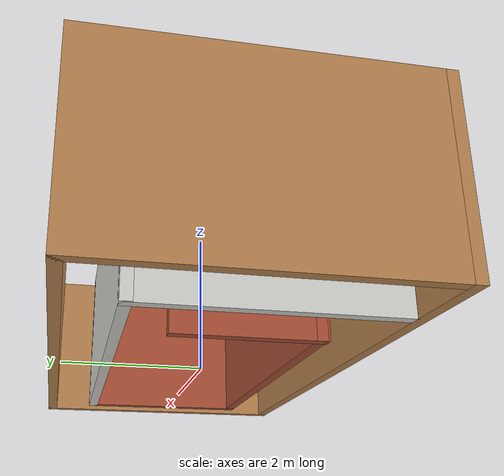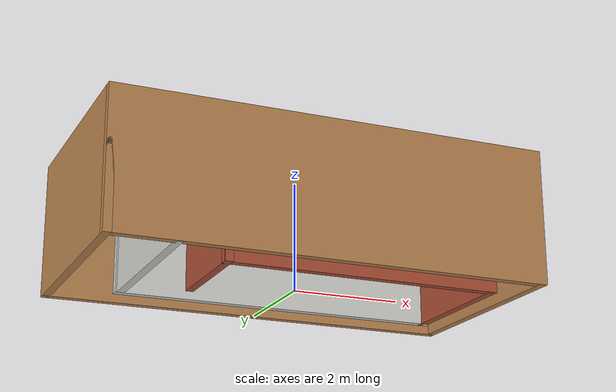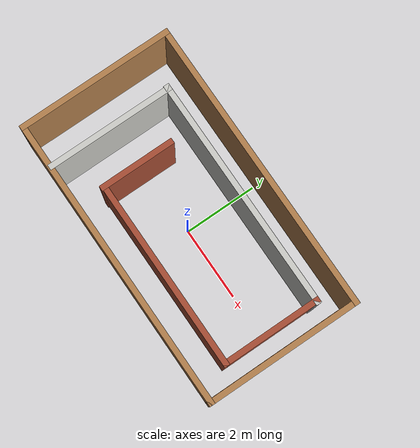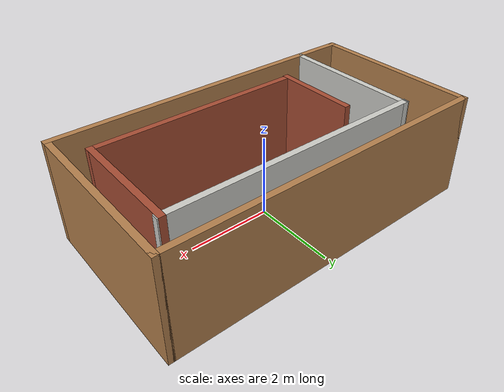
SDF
<?xml version='1.0'?>
<sdf version='1.6'>
  <model name='maze'>
    <pose frame=''>-0.07501 0.058006 0 0 -0 0</pose>
    <link name='Wall_0'>
      <collision name='Wall_0_Collision'>
        <geometry>
          <box>
            <size>8 0.15 2.5</size>
          </box>
        </geometry>
        <pose frame=''>0 0 1.25 0 -0 0</pose>
      </collision>
      <visual name='Wall_0_Visual'>
        <pose frame=''>0 0 1.25 0 -0 0</pose>
        <geometry>
          <box>
            <size>8 0.15 2.5</size>
          </box>
        </geometry>
        <material>
          <script>
            <uri>file://media/materials/scripts/gazebo.material</uri>
            <name>Gazebo/Wood</name>
          </script>
          <ambient>1 1 1 1</ambient>
        </material>
        <meta>
          <layer>0</layer>
        </meta>
      </visual>
      <pose frame=''>0 -2.05 0 0 -0 0</pose>
    </link>
    <link name='Wall_10'>
      <collision name='Wall_10_Collision'>
        <geometry>
          <box>
            <size>2.7288 0.15 2.5</size>
          </box>
        </geometry>
        <pose frame=''>0 0 1.25 0 -0 0</pose>
      </collision>
      <visual name='Wall_10_Visual'>
        <pose frame=''>0 0 1.25 0 -0 0</pose>
        <geometry>
          <box>
            <size>2.7288 0.15 2.5</size>
          </box>
        </geometry>
        <material>
          <script>
            <uri>file://media/materials/scripts/gazebo.material</uri>
            <name>Gazebo/Bricks</name>
          </script>
          <ambient>1 1 1 1</ambient>
        </material>
        <meta>
          <layer>0</layer>
        </meta>
      </visual>
      <pose frame=''>3.37802 0.02737 0 0 -0 -1.5708</pose>
    </link>
    <link name='Wall_11'>
      <collision name='Wall_11_Collision'>
        <geometry>
          <box>
            <size>5.17624 0.15 2.5</size>
          </box>
        </geometry>
        <pose frame=''>0 0 1.25 0 -0 0</pose>
      </collision>
      <visual name='Wall_11_Visual'>
        <pose frame=''>0 0 1.25 0 -0 0</pose>
        <geometry>
          <box>
            <size>5.17624 0.15 2.5</size>
          </box>
        </geometry>
        <material>
          <script>
            <uri>file://media/materials/scripts/gazebo.material</uri>
            <name>Gazebo/Bricks</name>
          </script>
          <ambient>1 1 1 1</ambient>
        </material>
        <meta>
          <layer>0</layer>
        </meta>
      </visual>
      <pose frame=''>0.865218 -1.26203 0 0 -0 3.14159</pose>
    </link>
    <link name='Wall_12'>
      <collision name='Wall_12_Collision'>
        <geometry>
          <box>
            <size>2.0586 0.15 2.5</size>
          </box>
        </geometry>
        <pose frame=''>0 0 1.25 0 -0 0</pose>
      </collision>
      <visual name='Wall_12_Visual'>
        <pose frame=''>0 0 1.25 0 -0 0</pose>
        <geometry>
          <box>
            <size>2.0586 0.15 2.5</size>
          </box>
        </geometry>
        <material>
          <script>
            <uri>file://media/materials/scripts/gazebo.material</uri>
            <name>Gazebo/Bricks</name>
          </script>
          <ambient>1 1 1 1</ambient>
        </material>
        <meta>
          <layer>0</layer>
        </meta>
      </visual>
      <pose frame=''>-1.64758 -0.33433 0 0 -0 1.5708</pose>
    </link>
    <link name='Wall_2'>
      <collision name='Wall_2_Collision'>
        <geometry>
          <box>
            <size>4.25 0.15 2.5</size>
          </box>
        </geometry>
        <pose frame=''>0 0 1.25 0 -0 0</pose>
      </collision>
      <visual name='Wall_2_Visual'>
        <pose frame=''>0 0 1.25 0 -0 0</pose>
        <geometry>
          <box>
            <size>4.25 0.15 2.5</size>
          </box>
        </geometry>
        <material>
          <script>
            <uri>file://media/materials/scripts/gazebo.material</uri>
            <name>Gazebo/Wood</name>
          </script>
          <ambient>1 1 1 1</ambient>
        </material>
        <meta>
          <layer>0</layer>
        </meta>
      </visual>
      <pose frame=''>-3.925 -0 0 0 -0 1.5708</pose>
    </link>
    <link name='Wall_3'>
      <collision name='Wall_3_Collision'>
        <geometry>
          <box>
            <size>8 0.15 2.5</size>
          </box>
        </geometry>
        <pose frame=''>0 0 1.25 0 -0 0</pose>
      </collision>
      <visual name='Wall_3_Visual'>
        <pose frame=''>0 0 1.25 0 -0 0</pose>
        <geometry>
          <box>
            <size>8 0.15 2.5</size>
          </box>
        </geometry>
        <material>
          <script>
            <uri>file://media/materials/scripts/gazebo.material</uri>
            <name>Gazebo/Wood</name>
          </script>
          <ambient>1 1 1 1</ambient>
        </material>
        <meta>
          <layer>0</layer>
        </meta>
      </visual>
      <pose frame=''>0 2.05 0 0 -0 0</pose>
    </link>
    <link name='Wall_4'>
      <collision name='Wall_4_Collision'>
        <geometry>
          <box>
            <size>4.25 0.15 2.5</size>
          </box>
        </geometry>
        <pose frame=''>0 0 1.25 0 -0 0</pose>
      </collision>
      <visual name='Wall_4_Visual'>
        <pose frame=''>0 0 1.25 0 -0 0</pose>
        <geometry>
          <box>
            <size>4.25 0.15 2.5</size>
          </box>
        </geometry>
        <material>
          <script>
            <uri>file://media/materials/scripts/gazebo.material</uri>
            <name>Gazebo/Wood</name>
          </script>
          <ambient>1 1 1 1</ambient>
        </material>
        <meta>
          <layer>0</layer>
        </meta>
      </visual>
      <pose frame=''>3.925 -0 0 0 -0 -1.5708</pose>
    </link>
    <link name='Wall_8'>
      <collision name='Wall_8_Collision'>
        <geometry>
          <box>
            <size>3.4788 0.15 2.5</size>
          </box>
        </geometry>
        <pose frame=''>0 0 1.25 0 -0 0</pose>
      </collision>
      <visual name='Wall_8_Visual'>
        <pose frame=''>0 0 1.25 0 -0 0</pose>
        <geometry>
          <box>
            <size>3.4788 0.15 2.5</size>
          </box>
        </geometry>
        <material>
          <script>
            <uri>file://media/materials/scripts/gazebo.material</uri>
            <name>Gazebo/CeilingTiled</name>
          </script>
          <ambient>1 1 1 1</ambient>
        </material>
        <meta>
          <layer>0</layer>
        </meta>
      </visual>
      <pose frame=''>-2.75398 -0.34763 0 0 -0 1.5708</pose>
    </link>
    <link name='Wall_9'>
      <collision name='Wall_9_Collision'>
        <geometry>
          <box>
            <size>6.3352 0.15 2.5</size>
          </box>
        </geometry>
        <pose frame=''>0 0 1.25 0 -0 0</pose>
      </collision>
      <visual name='Wall_9_Visual'>
        <pose frame=''>0 0 1.25 0 -0 0</pose>
        <geometry>
          <box>
            <size>6.3352 0.15 2.5</size>
          </box>
        </geometry>
        <material>
          <script>
            <uri>file://media/materials/scripts/gazebo.material</uri>
            <name>Gazebo/CeilingTiled</name>
          </script>
          <ambient>1 1 1 1</ambient>
        </material>
        <meta>
          <layer>0</layer>
        </meta>
      </visual>
      <pose frame=''>0.312018 1.31677 0 0 -0 0</pose>
    </link>
    <static>1</static>
  </model>
</sdf>
